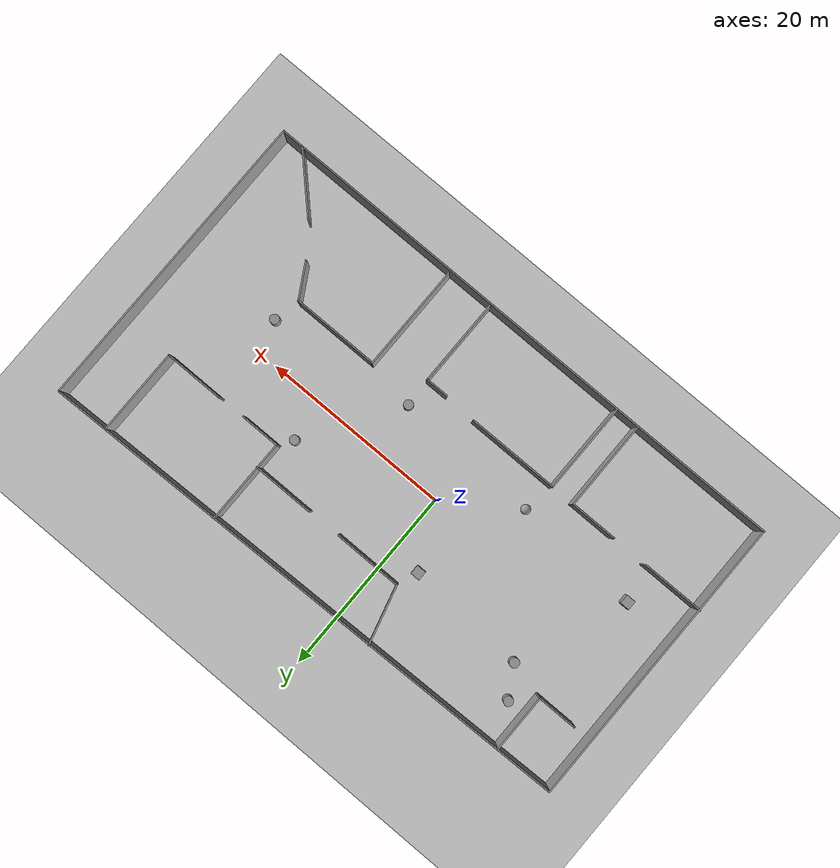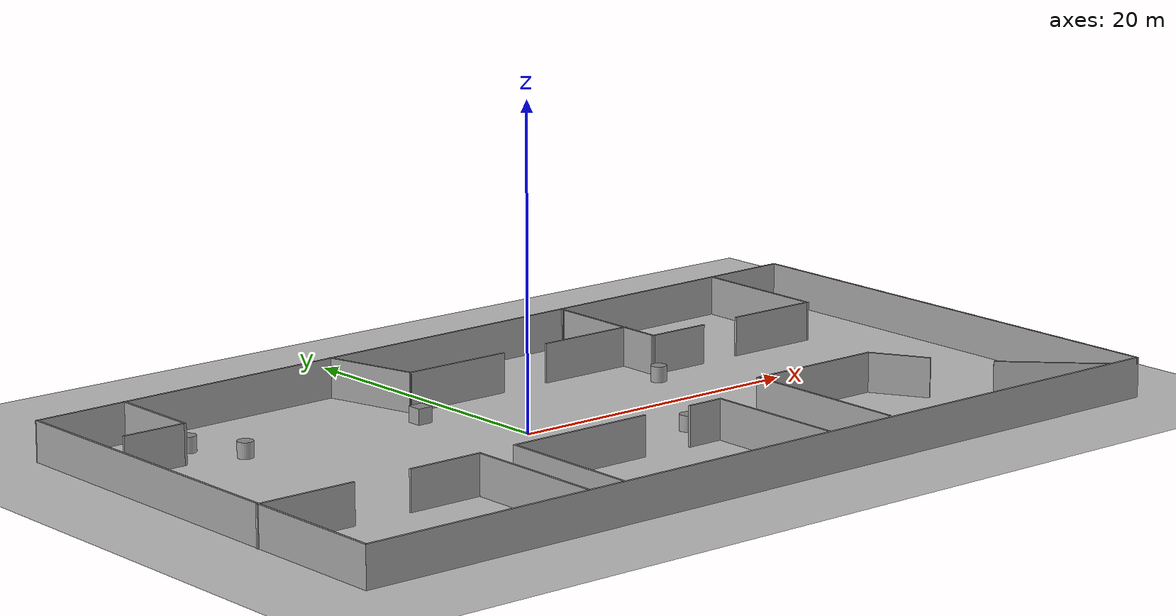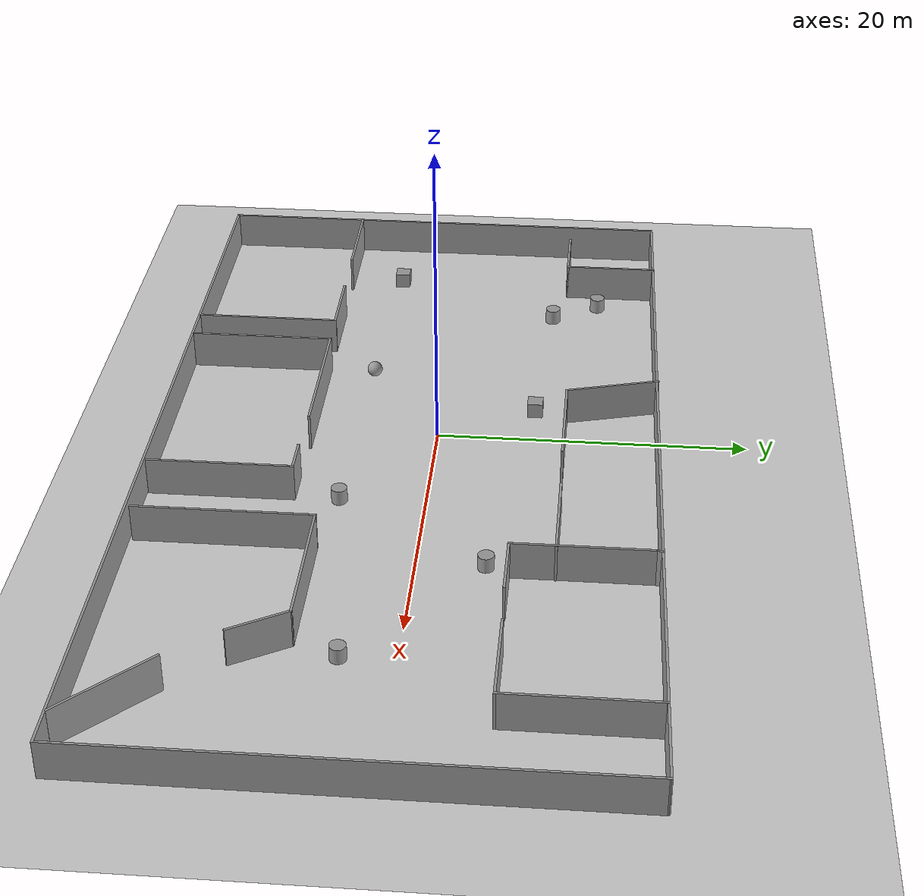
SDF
<sdf version="1.7">
 <world name="default">
  <light name="sun" type="directional">
   <pose>0 0 10 0 -0 0</pose>
   <diffuse>0.8 0.8 0.8 1</diffuse>
   <specular>0.2 0.2 0.2 1</specular>
   <attenuation>
    <range>1000</range>
    <constant>0.9</constant>
    <linear>0.01</linear>
    <quadratic>0.001</quadratic>
   </attenuation>
   <direction>-0.5 0.1 -0.9</direction>
   <spot><inner_angle>0</inner_angle><outer_angle>0</outer_angle><falloff>0</falloff></spot>
  </light>
  <model name="ground_plane">
   <static>1</static>
   <link name="link">
    <collision name="collision">
     <geometry><plane><normal>0 0 1</normal><size>100 100</size></plane></geometry>
     <surface>
      <contact><collide_bitmask>65535</collide_bitmask></contact>
      <friction><ode><mu>100</mu><mu2>50</mu2></ode></friction>
     </surface>
    </collision>
    <visual name="visual">
     <cast_shadows>0</cast_shadows>
     <geometry><plane><normal>0 0 1</normal><size>100 100</size></plane></geometry>
     <material>
      <script><uri>file://media/materials/scripts/gazebo.material</uri><name>Gazebo/Grey</name></script>
     </material>
    </visual>
   </link>
  </model>
  <gravity>0 0 -9.8</gravity>
  <magnetic_field>6e-06 2.3e-05 -4.2e-05</magnetic_field>
  <atmosphere type="adiabatic"/>
  <physics type="ode">
   <max_step_size>0.001</max_step_size>
   <real_time_factor>1</real_time_factor>
   <real_time_update_rate>1000</real_time_update_rate>
  </physics>
  <scene><ambient>0.4 0.4 0.4 1</ambient><background>0.7 0.7 0.7 1</background><shadows>1</shadows></scene>
  <spherical_coordinates>
   <surface_model>EARTH_WGS84</surface_model>
   <latitude_deg>0</latitude_deg>
   <longitude_deg>0</longitude_deg>
   <elevation>0</elevation>
   <heading_deg>0</heading_deg>
  </spherical_coordinates>
  <model name="delybot_test_world">
   <pose>4.14135 -1.27538 0 0 -0 0</pose>
   <link name="Wall_10">
    <collision name="Wall_10_Collision">
     <geometry><box><size>9.5 0.15 2.5</size></box></geometry>
     <pose>0 0 1.25 0 -0 0</pose>
    </collision>
    <visual name="Wall_10_Visual">
     <pose>0 0 1.25 0 -0 0</pose>
     <geometry><box><size>9.5 0.15 2.5</size></box></geometry>
     <material>
      <script><uri>file://media/materials/scripts/gazebo.material</uri><name>Gazebo/Grey</name></script>
      <ambient>1 1 1 1</ambient>
     </material>
     <meta><layer>0</layer></meta>
    </visual>
    <pose>-14.1556 -11.4024 0 0 -0 -1.5708</pose>
   </link>
   <link name="Wall_12">
    <collision name="Wall_12_Collision">
     <geometry><box><size>9.5 0.15 2.5</size></box></geometry>
     <pose>0 0 1.25 0 -0 0</pose>
    </collision>
    <visual name="Wall_12_Visual">
     <pose>0 0 1.25 0 -0 0</pose>
     <geometry><box><size>9.5 0.15 2.5</size></box></geometry>
     <material>
      <script><uri>file://media/materials/scripts/gazebo.material</uri><name>Gazebo/Grey</name></script>
      <ambient>1 1 1 1</ambient>
     </material>
     <meta><layer>0</layer></meta>
    </visual>
    <pose>-11.6469 -11.3924 0 0 -0 1.5708</pose>
   </link>
   <link name="Wall_13">
    <collision name="Wall_13_Collision">
     <geometry><box><size>9.75 0.15 2.5</size></box></geometry>
     <pose>0 0 1.25 0 -0 0</pose>
    </collision>
    <visual name="Wall_13_Visual">
     <pose>0 0 1.25 0 -0 0</pose>
     <geometry><box><size>9.75 0.15 2.5</size></box></geometry>
     <material>
      <script><uri>file://media/materials/scripts/gazebo.material</uri><name>Gazebo/Grey</name></script>
      <ambient>1 1 1 1</ambient>
     </material>
     <meta><layer>0</layer></meta>
    </visual>
    <pose>-6.8469 -6.71738 0 0 -0 0</pose>
   </link>
   <link name="Wall_15">
    <collision name="Wall_15_Collision">
     <geometry><box><size>2.5 0.15 2.5</size></box></geometry>
     <pose>0 0 1.25 0 -0 0</pose>
    </collision>
    <visual name="Wall_15_Visual">
     <pose>0 0 1.25 0 -0 0</pose>
     <geometry><box><size>2.5 0.15 2.5</size></box></geometry>
     <material>
      <script><uri>file://media/materials/scripts/gazebo.material</uri><name>Gazebo/Grey</name></script>
      <ambient>1 1 1 1</ambient>
     </material>
     <meta><layer>0</layer></meta>
    </visual>
    <pose>2.54739 -6.86896 0 0 -0 0</pose>
   </link>
   <link name="Wall_16">
    <collision name="Wall_16_Collision">
     <geometry><box><size>9.25 0.15 2.5</size></box></geometry>
     <pose>0 0 1.25 0 -0 0</pose>
    </collision>
    <visual name="Wall_16_Visual">
     <pose>0 0 1.25 0 -0 0</pose>
     <geometry><box><size>9.25 0.15 2.5</size></box></geometry>
     <material>
      <script><uri>file://media/materials/scripts/gazebo.material</uri><name>Gazebo/Grey</name></script>
      <ambient>1 1 1 1</ambient>
     </material>
     <meta><layer>0</layer></meta>
    </visual>
    <pose>3.72239 -11.419 0 0 -0 -1.5708</pose>
   </link>
   <link name="Wall_18">
    <collision name="Wall_18_Collision">
     <geometry><box><size>11.25 0.15 2.5</size></box></geometry>
     <pose>0 0 1.25 0 -0 0</pose>
    </collision>
    <visual name="Wall_18_Visual">
     <pose>0 0 1.25 0 -0 0</pose>
     <geometry><box><size>11.25 0.15 2.5</size></box></geometry>
     <material>
      <script><uri>file://media/materials/scripts/gazebo.material</uri><name>Gazebo/Grey</name></script>
      <ambient>1 1 1 1</ambient>
     </material>
     <meta><layer>0</layer></meta>
    </visual>
    <pose>8.66037 -10.3051 0 0 -0 1.5708</pose>
   </link>
   <link name="Wall_19">
    <collision name="Wall_19_Collision">
     <geometry><box><size>9.25 0.15 2.5</size></box></geometry>
     <pose>0 0 1.25 0 -0 0</pose>
    </collision>
    <visual name="Wall_19_Visual">
     <pose>0 0 1.25 0 -0 0</pose>
     <geometry><box><size>9.25 0.15 2.5</size></box></geometry>
     <material>
      <script><uri>file://media/materials/scripts/gazebo.material</uri><name>Gazebo/Grey</name></script>
      <ambient>1 1 1 1</ambient>
     </material>
     <meta><layer>0</layer></meta>
    </visual>
    <pose>13.2104 -4.75511 0 0 -0 0</pose>
   </link>
   <link name="Wall_2">
    <collision name="Wall_2_Collision">
     <geometry><box><size>31.25 0.15 2.5</size></box></geometry>
     <pose>0 0 1.25 0 -0 0</pose>
    </collision>
    <visual name="Wall_2_Visual">
     <pose>0 0 1.25 0 -0 0</pose>
     <geometry><box><size>31.25 0.15 2.5</size></box></geometry>
     <material>
      <script><uri>file://media/materials/scripts/gazebo.material</uri><name>Gazebo/Grey</name></script>
      <ambient>1 1 1 1</ambient>
     </material>
     <meta><layer>0</layer></meta>
    </visual>
    <pose>-29.2654 -0.62579 0 0 -0 -1.5708</pose>
   </link>
   <link name="Wall_20">
    <collision name="Wall_20_Collision">
     <geometry><box><size>4 0.15 2.5</size></box></geometry>
     <pose>0 0 1.25 0 -0 0</pose>
    </collision>
    <visual name="Wall_20_Visual">
     <pose>0 0 1.25 0 -0 0</pose>
     <geometry><box><size>4 0.15 2.5</size></box></geometry>
     <material>
      <script><uri>file://media/materials/scripts/gazebo.material</uri><name>Gazebo/Grey</name></script>
      <ambient>1 1 1 1</ambient>
     </material>
     <meta><layer>0</layer></meta>
    </visual>
    <pose>18.7229 -6.42221 0 0 -0 -1.0472</pose>
   </link>
   <link name="Wall_22">
    <collision name="Wall_22_Collision">
     <geometry><box><size>7 0.15 2.5</size></box></geometry>
     <pose>0 0 1.25 0 -0 0</pose>
    </collision>
    <visual name="Wall_22_Visual">
     <pose>0 0 1.25 0 -0 0</pose>
     <geometry><box><size>7 0.15 2.5</size></box></geometry>
     <material>
      <script><uri>file://media/materials/scripts/gazebo.material</uri><name>Gazebo/Grey</name></script>
      <ambient>1 1 1 1</ambient>
     </material>
     <meta><layer>0</layer></meta>
    </visual>
    <pose>24.5261 -13.6777 0 0 -0 -0.785398</pose>
   </link>
   <link name="Wall_24">
    <collision name="Wall_24_Collision">
     <geometry><box><size>9.25 0.15 2.5</size></box></geometry>
     <pose>0 0 1.25 0 -0 0</pose>
    </collision>
    <visual name="Wall_24_Visual">
     <pose>0 0 1.25 0 -0 0</pose>
     <geometry><box><size>9.25 0.15 2.5</size></box></geometry>
     <material>
      <script><uri>file://media/materials/scripts/gazebo.material</uri><name>Gazebo/Grey</name></script>
      <ambient>1 1 1 1</ambient>
     </material>
     <meta><layer>0</layer></meta>
    </visual>
    <pose>23.6609 11.5063 0 0 -0 -1.5708</pose>
   </link>
   <link name="Wall_25">
    <collision name="Wall_25_Collision">
     <geometry><box><size>6.25 0.15 2.5</size></box></geometry>
     <pose>0 0 1.25 0 -0 0</pose>
    </collision>
    <visual name="Wall_25_Visual">
     <pose>0 0 1.25 0 -0 0</pose>
     <geometry><box><size>6.25 0.15 2.5</size></box></geometry>
     <material>
      <script><uri>file://media/materials/scripts/gazebo.material</uri><name>Gazebo/Grey</name></script>
      <ambient>1 1 1 1</ambient>
     </material>
     <meta><layer>0</layer></meta>
    </visual>
    <pose>20.6109 6.95632 0 0 -0 3.14159</pose>
   </link>
   <link name="Wall_27">
    <collision name="Wall_27_Collision">
     <geometry><box><size>4.25 0.15 2.5</size></box></geometry>
     <pose>0 0 1.25 0 -0 0</pose>
    </collision>
    <visual name="Wall_27_Visual">
     <pose>0 0 1.25 0 -0 0</pose>
     <geometry><box><size>4.25 0.15 2.5</size></box></geometry>
     <material>
      <script><uri>file://media/materials/scripts/gazebo.material</uri><name>Gazebo/Grey</name></script>
      <ambient>1 1 1 1</ambient>
     </material>
     <meta><layer>0</layer></meta>
    </visual>
    <pose>12.554 6.8579 0 0 -0 3.14159</pose>
   </link>
   <link name="Wall_28">
    <collision name="Wall_28_Collision">
     <geometry><box><size>8.75 0.15 2.5</size></box></geometry>
     <pose>0 0 1.25 0 -0 0</pose>
    </collision>
    <visual name="Wall_28_Visual">
     <pose>0 0 1.25 0 -0 0</pose>
     <geometry><box><size>8.75 0.15 2.5</size></box></geometry>
     <material>
      <script><uri>file://media/materials/scripts/gazebo.material</uri><name>Gazebo/Grey</name></script>
      <ambient>1 1 1 1</ambient>
     </material>
     <meta><layer>0</layer></meta>
    </visual>
    <pose>10.504 11.1579 0 0 -0 1.5708</pose>
   </link>
   <link name="Wall_29">
    <collision name="Wall_29_Collision">
     <geometry><box><size>0.5 0.15 2.5</size></box></geometry>
     <pose>0 0 1.25 0 -0 0</pose>
    </collision>
    <visual name="Wall_29_Visual">
     <pose>0 0 1.25 0 -0 0</pose>
     <geometry><box><size>0.5 0.15 2.5</size></box></geometry>
     <material>
      <script><uri>file://media/materials/scripts/gazebo.material</uri><name>Gazebo/Grey</name></script>
      <ambient>1 1 1 1</ambient>
     </material>
     <meta><layer>0</layer></meta>
    </visual>
    <pose>10.5493 15.6269 0 0 -0 1.309</pose>
   </link>
   <link name="Wall_3">
    <collision name="Wall_3_Collision">
     <geometry><box><size>58.75 0.15 2.5</size></box></geometry>
     <pose>0 0 1.25 0 -0 0</pose>
    </collision>
    <visual name="Wall_3_Visual">
     <pose>0 0 1.25 0 -0 0</pose>
     <geometry><box><size>58.75 0.15 2.5</size></box></geometry>
     <material>
      <script><uri>file://media/materials/scripts/gazebo.material</uri><name>Gazebo/Grey</name></script>
      <ambient>1 1 1 1</ambient>
     </material>
     <meta><layer>0</layer></meta>
    </visual>
    <pose>0.034587 -16.1758 0 0 -0 0</pose>
   </link>
   <link name="Wall_31">
    <collision name="Wall_31_Collision">
     <geometry><box><size>6.5 0.15 2.5</size></box></geometry>
     <pose>0 0 1.25 0 -0 0</pose>
    </collision>
    <visual name="Wall_31_Visual">
     <pose>0 0 1.25 0 -0 0</pose>
     <geometry><box><size>6.5 0.15 2.5</size></box></geometry>
     <material>
      <script><uri>file://media/materials/scripts/gazebo.material</uri><name>Gazebo/Grey</name></script>
      <ambient>1 1 1 1</ambient>
     </material>
     <meta><layer>0</layer></meta>
    </visual>
    <pose>7.39581 9.61743 0 0 -0 3.14159</pose>
   </link>
   <link name="Wall_33">
    <collision name="Wall_33_Collision">
     <geometry><box><size>7.25 0.15 2.5</size></box></geometry>
     <pose>0 0 1.25 0 -0 0</pose>
    </collision>
    <visual name="Wall_33_Visual">
     <pose>0 0 1.25 0 -0 0</pose>
     <geometry><box><size>7.25 0.15 2.5</size></box></geometry>
     <material>
      <script><uri>file://media/materials/scripts/gazebo.material</uri><name>Gazebo/Grey</name></script>
      <ambient>1 1 1 1</ambient>
     </material>
     <meta><layer>0</layer></meta>
    </visual>
    <pose>-2.88518 9.54667 0 0 -0 3.14159</pose>
   </link>
   <link name="Wall_34">
    <collision name="Wall_34_Collision">
     <geometry><box><size>6.25 0.15 2.5</size></box></geometry>
     <pose>0 0 1.25 0 -0 0</pose>
    </collision>
    <visual name="Wall_34_Visual">
     <pose>0 0 1.25 0 -0 0</pose>
     <geometry><box><size>6.25 0.15 2.5</size></box></geometry>
     <material>
      <script><uri>file://media/materials/scripts/gazebo.material</uri><name>Gazebo/Grey</name></script>
      <ambient>1 1 1 1</ambient>
     </material>
     <meta><layer>0</layer></meta>
    </visual>
    <pose>-7.22458 12.4927 0 0 -0 1.8326</pose>
   </link>
   <link name="Wall_36">
    <collision name="Wall_36_Collision">
     <geometry><box><size>6.25 0.15 2.5</size></box></geometry>
     <pose>0 0 1.25 0 -0 0</pose>
    </collision>
    <visual name="Wall_36_Visual">
     <pose>0 0 1.25 0 -0 0</pose>
     <geometry><box><size>6.25 0.15 2.5</size></box></geometry>
     <material>
      <script><uri>file://media/materials/scripts/gazebo.material</uri><name>Gazebo/Grey</name></script>
      <ambient>1 1 1 1</ambient>
     </material>
     <meta><layer>0</layer></meta>
    </visual>
    <pose>-23.1803 12.0157 0 0 -0 -1.5708</pose>
   </link>
   <link name="Wall_37">
    <collision name="Wall_37_Collision">
     <geometry><box><size>4.25 0.15 2.5</size></box></geometry>
     <pose>0 0 1.25 0 -0 0</pose>
    </collision>
    <visual name="Wall_37_Visual">
     <pose>0 0 1.25 0 -0 0</pose>
     <geometry><box><size>4.25 0.15 2.5</size></box></geometry>
     <material>
      <script><uri>file://media/materials/scripts/gazebo.material</uri><name>Gazebo/Grey</name></script>
      <ambient>1 1 1 1</ambient>
     </material>
     <meta><layer>0</layer></meta>
    </visual>
    <pose>-25.2303 8.96572 0 0 -0 3.14159</pose>
   </link>
   <link name="Wall_4">
    <collision name="Wall_4_Collision">
     <geometry><box><size>32.5 0.15 2.5</size></box></geometry>
     <pose>0 0 1.25 0 -0 0</pose>
    </collision>
    <visual name="Wall_4_Visual">
     <pose>0 0 1.25 0 -0 0</pose>
     <geometry><box><size>32.5 0.15 2.5</size></box></geometry>
     <material>
      <script><uri>file://media/materials/scripts/gazebo.material</uri><name>Gazebo/Grey</name></script>
      <ambient>1 1 1 1</ambient>
     </material>
     <meta><layer>0</layer></meta>
    </visual>
    <pose>29.3346 -0.00079 0 0 -0 1.5708</pose>
   </link>
   <link name="Wall_5">
    <collision name="Wall_5_Collision">
     <geometry><box><size>58.7633 0.15 2.5</size></box></geometry>
     <pose>0 0 1.25 0 -0 0</pose>
    </collision>
    <visual name="Wall_5_Visual">
     <pose>0 0 1.25 0 -0 0</pose>
     <geometry><box><size>58.7633 0.15 2.5</size></box></geometry>
     <material>
      <script><uri>file://media/materials/scripts/gazebo.material</uri><name>Gazebo/Grey</name></script>
      <ambient>1 1 1 1</ambient>
     </material>
     <meta><layer>0</layer></meta>
    </visual>
    <pose>0.034587 15.5492 0 0 -0 -3.12026</pose>
   </link>
   <link name="Wall_7">
    <collision name="Wall_7_Collision">
     <geometry><box><size>6.5 0.15 2.5</size></box></geometry>
     <pose>0 0 1.25 0 -0 0</pose>
    </collision>
    <visual name="Wall_7_Visual">
     <pose>0 0 1.25 0 -0 0</pose>
     <geometry><box><size>6.5 0.15 2.5</size></box></geometry>
     <material>
      <script><uri>file://media/materials/scripts/gazebo.material</uri><name>Gazebo/Grey</name></script>
      <ambient>1 1 1 1</ambient>
     </material>
     <meta><layer>0</layer></meta>
    </visual>
    <pose>-26.1612 -6.72745 0 0 -0 0</pose>
   </link>
   <link name="Wall_9">
    <collision name="Wall_9_Collision">
     <geometry><box><size>5 0.15 2.5</size></box></geometry>
     <pose>0 0 1.25 0 -0 0</pose>
    </collision>
    <visual name="Wall_9_Visual">
     <pose>0 0 1.25 0 -0 0</pose>
     <geometry><box><size>5 0.15 2.5</size></box></geometry>
     <material>
      <script><uri>file://media/materials/scripts/gazebo.material</uri><name>Gazebo/Grey</name></script>
      <ambient>1 1 1 1</ambient>
     </material>
     <meta><layer>0</layer></meta>
    </visual>
    <pose>-16.5806 -6.72745 0 0 -0 0</pose>
   </link>
   <static>1</static>
  </model>
  <model name="unit_cylinder">
   <pose>22.8306 -3.3461 0.499992 -3e-06 4e-06 0</pose>
   <link name="link">
    <inertial>
     <mass>1</mass>
     <inertia><ixx>0.145833</ixx><ixy>0</ixy><ixz>0</ixz><iyy>0.145833</iyy><iyz>0</iyz><izz>0.125</izz></inertia>
    </inertial>
    <collision name="collision">
     <geometry><cylinder><radius>0.5</radius><length>1</length></cylinder></geometry>
    </collision>
    <visual name="visual">
     <geometry><cylinder><radius>0.5</radius><length>1</length></cylinder></geometry>
     <material>
      <script><name>Gazebo/Grey</name><uri>file://media/materials/scripts/gazebo.material</uri></script>
     </material>
    </visual>
   </link>
  </model>
  <model name="unit_cylinder_0">
   <pose>7.79495 -5.33181 0.499998 3e-06 -4e-06 0</pose>
   <link name="link">
    <inertial>
     <mass>1</mass>
     <inertia><ixx>0.145833</ixx><ixy>0</ixy><ixz>0</ixz><iyy>0.145833</iyy><iyz>0</iyz><izz>0.125</izz></inertia>
    </inertial>
    <collision name="collision">
     <geometry><cylinder><radius>0.5</radius><length>1</length></cylinder></geometry>
    </collision>
    <visual name="visual">
     <geometry><cylinder><radius>0.5</radius><length>1</length></cylinder></geometry>
     <material>
      <script><name>Gazebo/Grey</name><uri>file://media/materials/scripts/gazebo.material</uri></script>
     </material>
    </visual>
   </link>
  </model>
  <model name="unit_cylinder_1">
   <pose>-15.4533 6.81927 0.499992 -3e-06 4e-06 0</pose>
   <link name="link">
    <inertial>
     <mass>1</mass>
     <inertia><ixx>0.145833</ixx><ixy>0</ixy><ixz>0</ixz><iyy>0.145833</iyy><iyz>0</iyz><izz>0.125</izz></inertia>
    </inertial>
    <collision name="collision">
     <geometry><cylinder><radius>0.5</radius><length>1</length></cylinder></geometry>
    </collision>
    <visual name="visual">
     <geometry><cylinder><radius>0.5</radius><length>1</length></cylinder></geometry>
     <material>
      <script><name>Gazebo/Grey</name><uri>file://media/materials/scripts/gazebo.material</uri></script>
     </material>
    </visual>
   </link>
  </model>
  <model name="unit_box">
   <pose>-20.0047 -4.38304 0.499995 0 1e-05 0</pose>
   <link name="link">
    <inertial>
     <mass>1</mass>
     <inertia>
      <ixx>0.166667</ixx>
      <ixy>0</ixy>
      <ixz>0</ixz>
      <iyy>0.166667</iyy>
      <iyz>0</iyz>
      <izz>0.166667</izz>
     </inertia>
    </inertial>
    <collision name="collision"><geometry><box><size>1 1 1</size></box></geometry></collision>
    <visual name="visual">
     <geometry><box><size>1 1 1</size></box></geometry>
     <material>
      <script><name>Gazebo/Grey</name><uri>file://media/materials/scripts/gazebo.material</uri></script>
     </material>
    </visual>
   </link>
  </model>
  <model name="unit_box_0">
   <pose>-3.16737 6.2062 0.499995 -1e-05 -0 -0</pose>
   <link name="link">
    <inertial>
     <mass>1</mass>
     <inertia>
      <ixx>0.166667</ixx>
      <ixy>0</ixy>
      <ixz>0</ixz>
      <iyy>0.166667</iyy>
      <iyz>0</iyz>
      <izz>0.166667</izz>
     </inertia>
    </inertial>
    <collision name="collision"><geometry><box><size>1 1 1</size></box></geometry></collision>
    <visual name="visual">
     <geometry><box><size>1 1 1</size></box></geometry>
     <material>
      <script><name>Gazebo/Grey</name><uri>file://media/materials/scripts/gazebo.material</uri></script>
     </material>
    </visual>
   </link>
  </model>
  <model name="unit_sphere">
   <pose>-7.11218 -4.92191 0.5 0 -0 0</pose>
   <link name="link">
    <inertial>
     <mass>1</mass>
     <inertia><ixx>0.1</ixx><ixy>0</ixy><ixz>0</ixz><iyy>0.1</iyy><iyz>0</iyz><izz>0.1</izz></inertia>
    </inertial>
    <collision name="collision"><geometry><sphere><radius>0.5</radius></sphere></geometry></collision>
    <visual name="visual">
     <geometry><sphere><radius>0.5</radius></sphere></geometry>
     <material>
      <script><name>Gazebo/Grey</name><uri>file://media/materials/scripts/gazebo.material</uri></script>
     </material>
    </visual>
   </link>
  </model>
  <model name="unit_cylinder_2">
   <pose>13.901 4.21485 0.499993 -3e-06 -4e-06 -0</pose>
   <link name="link">
    <inertial>
     <mass>1</mass>
     <inertia><ixx>0.145833</ixx><ixy>0</ixy><ixz>0</ixz><iyy>0.145833</iyy><iyz>0</iyz><izz>0.125</izz></inertia>
    </inertial>
    <collision name="collision">
     <geometry><cylinder><radius>0.5</radius><length>1</length></cylinder></geometry>
    </collision>
    <visual name="visual">
     <geometry><cylinder><radius>0.5</radius><length>1</length></cylinder></geometry>
     <material>
      <script><name>Gazebo/Grey</name><uri>file://media/materials/scripts/gazebo.material</uri></script>
     </material>
    </visual>
   </link>
  </model>
  <model name="unit_cylinder_3">
   <pose>-17.3008 9.90601 0.499997 3e-06 4e-06 -0</pose>
   <link name="link">
    <inertial>
     <mass>1</mass>
     <inertia><ixx>0.145833</ixx><ixy>0</ixy><ixz>0</ixz><iyy>0.145833</iyy><iyz>0</iyz><izz>0.125</izz></inertia>
    </inertial>
    <collision name="collision">
     <geometry><cylinder><radius>0.5</radius><length>1</length></cylinder></geometry>
    </collision>
    <visual name="visual">
     <geometry><cylinder><radius>0.5</radius><length>1</length></cylinder></geometry>
     <material>
      <script><name>Gazebo/Grey</name><uri>file://media/materials/scripts/gazebo.material</uri></script>
     </material>
    </visual>
   </link>
  </model>
 </world>
</sdf>
